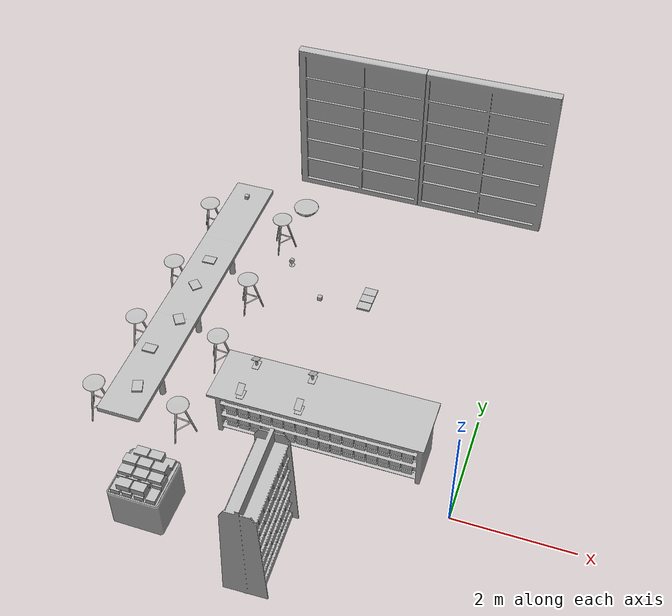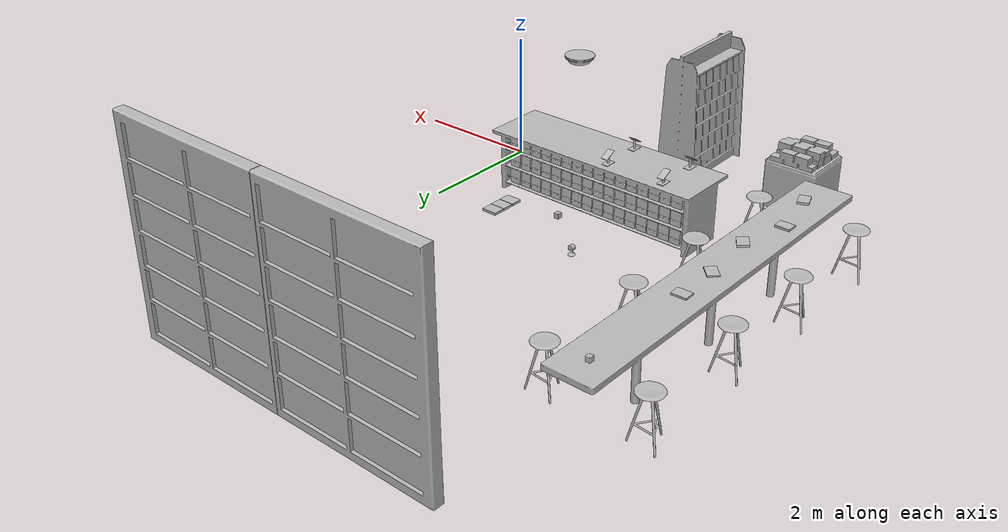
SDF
<sdf version="1.6">
 <world name="default">
  <model name="BookE_01_002">
   <include><uri>model://aws_robomaker_retail_BookE_01</uri></include>
   <pose>-5.414000 3.330672 0.934015 -0.000001 -0.000001 -1.541094</pose>
  </model>
  <model name="BookE_01_008">
   <include><uri>model://aws_robomaker_retail_BookE_01</uri></include>
   <pose>-5.315121 1.771952 0.955242 3.141243 -0.072268 -2.526906</pose>
  </model>
  <model name="BookE_01_010">
   <include><uri>model://aws_robomaker_retail_BookE_01</uri></include>
   <pose>-5.503415 1.012063 0.941463 0 0 -1.568440</pose>
  </model>
  <model name="BookE_01_012">
   <include><uri>model://aws_robomaker_retail_BookE_01</uri></include>
   <pose>-5.333584 0.186186 0.949316 -0.000001 -0.004549 -2.798485</pose>
  </model>
  <model name="BookE_01_013">
   <include><uri>model://aws_robomaker_retail_BookE_01</uri></include>
   <pose>-5.403906 2.650881 0.931119 0.021204 -0.000001 -2.355751</pose>
  </model>
  <model name="BookE_01_016">
   <include><uri>model://aws_robomaker_retail_BookE_01</uri></include>
   <pose>-2.357369 2.993687 1.054941 0 0 1.568157</pose>
  </model>
  <model name="BookE_01_019">
   <include><uri>model://aws_robomaker_retail_BookE_01</uri></include>
   <pose>-2.357369 3.172920 1.054941 0 0 1.568157</pose>
  </model>
  <model name="BookE_01_030">
   <include><uri>model://aws_robomaker_retail_BookE_01</uri></include>
   <pose>-2.357369 3.346395 1.054941 0 0 1.568157</pose>
  </model>
  <model name="BookD_01_002">
   <include><uri>model://aws_robomaker_retail_BookD_01</uri></include>
   <pose>-4.509612 -1.312536 0.804482 0 0 -0.000004</pose>
  </model>
  <model name="BookshelfA_01_003">
   <include><uri>model://aws_robomaker_retail_BookshelfA_01</uri></include>
   <pose>-2.554493 -1.487456 0.006337 0.001313 -0.001987 0.031824</pose>
  </model>
  <model name="BookshelfC_01_003">
   <include><uri>model://aws_robomaker_retail_BookshelfC_01</uri></include>
   <pose>-4.517110 -1.310229 0.045908 0 0 0</pose>
  </model>
  <model name="ChairB_01_009">
   <include><uri>model://aws_robomaker_retail_ChairB_01</uri></include>
   <pose>-4.602947 5.021919 0.030259 -0.001073 -0.001935 0.001439</pose>
  </model>
  <model name="ChairB_01_010">
   <include><uri>model://aws_robomaker_retail_ChairB_01</uri></include>
   <pose>-6.109693 5.026245 0.027274 -0.001422 -0.002424 0.000176</pose>
  </model>
  <model name="ChairB_01_011">
   <include><uri>model://aws_robomaker_retail_ChairB_01</uri></include>
   <pose>-4.616166 3.276753 0.0321 -0.001068 -0.001938 0.000117</pose>
  </model>
  <model name="ChairB_01_012">
   <include><uri>model://aws_robomaker_retail_ChairB_01</uri></include>
   <pose>-6.090762 3.293415 0.029216 -0.001072 -0.001936 0.000119</pose>
  </model>
  <model name="ChairB_01_013">
   <include><uri>model://aws_robomaker_retail_ChairB_01</uri></include>
   <pose>-4.589604 1.815766 0.032459 0.001362 -0.001944 0.000145</pose>
  </model>
  <model name="ChairB_01_014">
   <include><uri>model://aws_robomaker_retail_ChairB_01</uri></include>
   <pose>-6.130103 1.798599 0.02944 0.001362 -0.001946 0.000105</pose>
  </model>
  <model name="ChairB_01_015">
   <include><uri>model://aws_robomaker_retail_ChairB_01</uri></include>
   <pose>-4.607505 0.203637 0.030218 0.001362 -0.001944 0.000163</pose>
  </model>
  <model name="ChairB_01_016">
   <include><uri>model://aws_robomaker_retail_ChairB_01</uri></include>
   <pose>-6.121492 0.195027 0.027272 0.001357 -0.001950 0.003291</pose>
  </model>
  <model name="SecurityCamera_01_002">
   <include><uri>model://aws_robomaker_retail_SecurityCamera_01</uri></include>
   <pose>-3.904507 3.590531 1.037756 0 0 3.050913</pose>
  </model>
  <model name="DeskB_01_002">
   <include><uri>model://aws_robomaker_retail_DeskB_01</uri></include>
   <pose>-5.400709 2.580536 -0.181282 0 -0 0</pose>
  </model>
  <model name="DeskA_01_002">
   <include><uri>model://aws_robomaker_retail_DeskA_01</uri></include>
   <pose>-2.369938 0.836099 0.00876 -0.000772 -0.001938 0.000017</pose>
  </model>
  <model name="DoorB_01_001">
   <include><uri>model://aws_robomaker_retail_DoorB_01</uri></include>
   <pose>-2.492457 7.219370 -0.035203 0 -0 0</pose>
  </model>
  <model name="Tablet_01_002">
   <include><uri>model://aws_robomaker_retail_Tablet_01</uri></include>
   <pose>-2.650150 0.489109 1.180551 0.579329 0.041534 -0.007936</pose>
  </model>
  <model name="Tablet_01_004">
   <include><uri>model://aws_robomaker_retail_Tablet_01</uri></include>
   <pose>-3.639330 0.489109 1.180551 0.579329 0.041534 -0.007936</pose>
  </model>
  <model name="Tablet_01_007">
   <include><uri>model://aws_robomaker_retail_Tablet_01</uri></include>
   <pose>-2.649670 1.163816 1.177895 0.513308 -0.000001 3.110062</pose>
  </model>
  <model name="Tablet_01_008">
   <include><uri>model://aws_robomaker_retail_Tablet_01</uri></include>
   <pose>-3.636550 1.163816 1.177895 0.513308 -0.000001 3.110062</pose>
  </model>
  <model name="Holder_01_006">
   <include><uri>model://aws_robomaker_retail_Holder_01</uri></include>
   <pose>-2.647810 0.495602 1.037756 0 -0 0</pose>
  </model>
  <model name="Holder_01_008">
   <include><uri>model://aws_robomaker_retail_Holder_01</uri></include>
   <pose>-3.639583 0.495602 1.037756 0 -0 0</pose>
  </model>
  <model name="Holder_01_011">
   <include><uri>model://aws_robomaker_retail_Holder_01</uri></include>
   <pose>-2.659160 1.160829 1.037756 0 -0 -3.130149</pose>
  </model>
  <model name="Holder_01_012">
   <include><uri>model://aws_robomaker_retail_Holder_01</uri></include>
   <pose>-3.631300 1.160829 1.037756 0 -0 -3.130149</pose>
  </model>
  <model name="LightA_01_005">
   <include><uri>model://aws_robomaker_retail_LightA_01</uri></include>
   <pose>-3.271001 2.685925 3.150328 0 -0 0</pose>
  </model>
  <model name="MagicCube_01_002">
   <include><uri>model://aws_robomaker_retail_MagicCube_01</uri></include>
   <pose>-5.383672 5.177522 0.968608 1.564128 -0.000001 -1.555410</pose>
  </model>
  <model name="MagicCube_01_003">
   <include><uri>model://aws_robomaker_retail_MagicCube_01</uri></include>
   <pose>-3.146512 2.928458 1.035654 0 0 0</pose>
  </model>
 </world>
</sdf>
